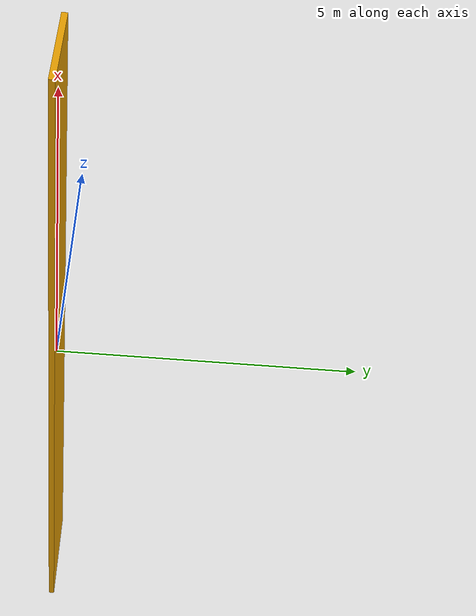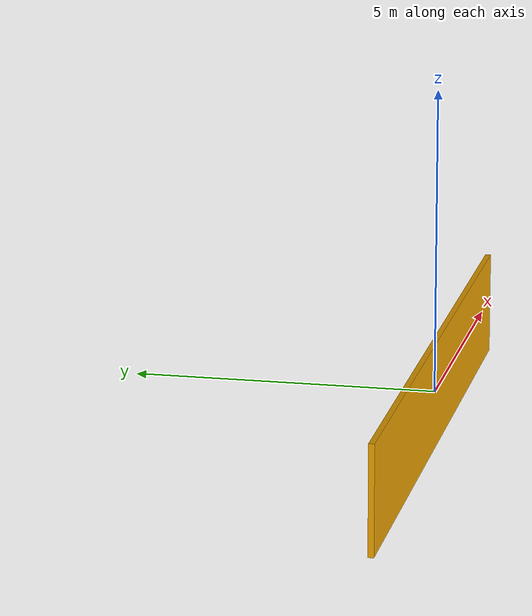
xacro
<?xml version="1.0"?>
<robot xmlns:xacro="http://www.ros.org/wiki/xacro" name="my_robot">
    <link name="base_link">
        <inertial>
            <mass value="1.0"/>
            <inertia ixx="0.01" ixy="0.0" ixz="0.0" iyy="0.01" iyz="0.0" izz="0.01"/>
        </inertial>
        <visual>
            <geometry>
                <mesh filename="package://clamp_fork/meshes/vehicle_test/test.obj"/>
            </geometry>
        </visual>
    </link>
</robot>
